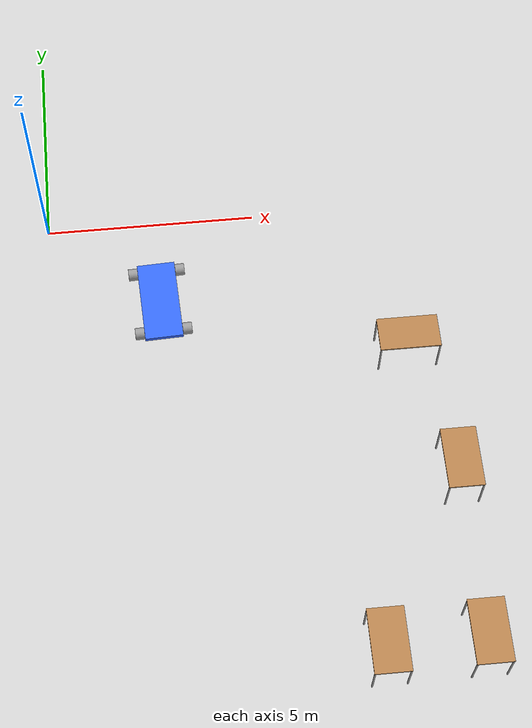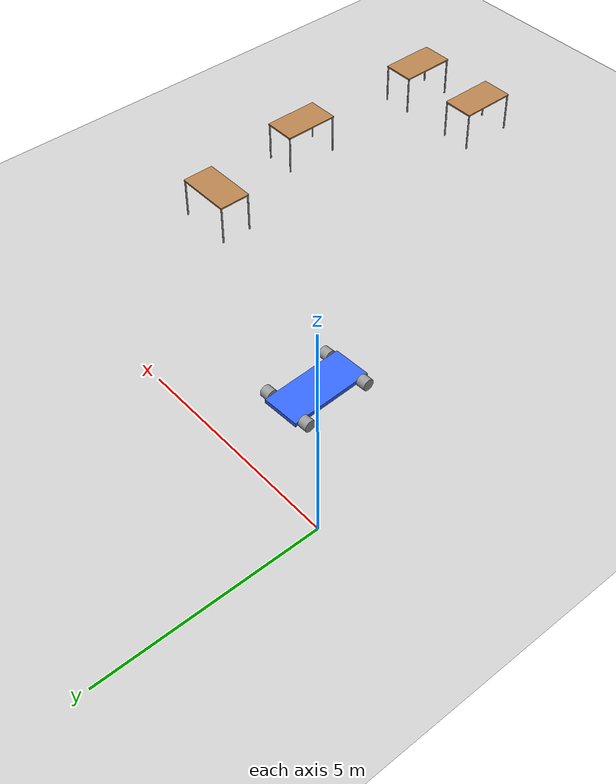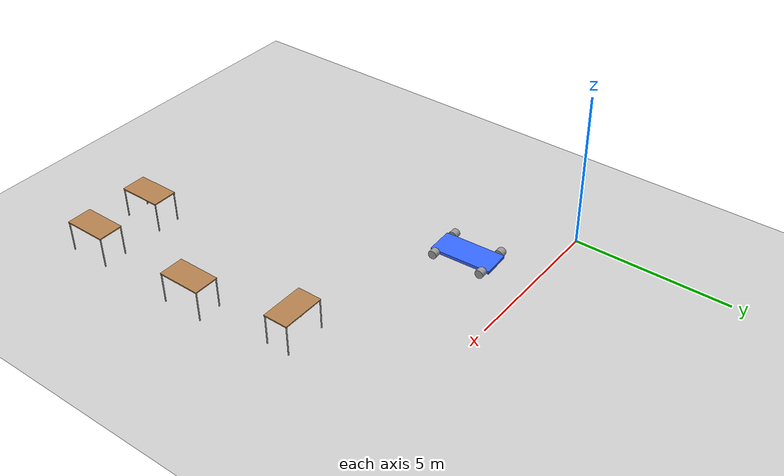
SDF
<sdf version="1.6">
 <world name="default">
  <model name="ground_plane">
   <static>1</static>
   <link name="link">
    <collision name="collision">
     <geometry><plane><normal>0 0 1</normal><size>100 100</size></plane></geometry>
     <surface><friction><ode><mu>100</mu><mu2>50</mu2></ode></friction></surface>
    </collision>
    <visual name="visual">
     <cast_shadows>0</cast_shadows>
     <geometry><plane><normal>0 0 1</normal><size>100 100</size></plane></geometry>
     <material>
      <script><uri>file://media/materials/scripts/gazebo.material</uri><name>Gazebo/Grey</name></script>
     </material>
    </visual>
   </link>
  </model>
  <model name="table_0_clone_0_clone_0">
   <static>0</static>
   <link name="link">
    <collision name="surface">
     <pose>0 0 1 0 -0 0</pose>
     <geometry><box><size>1.5 0.8 0.03</size></box></geometry>
     <surface><friction><ode><mu>0.6</mu><mu2>0.6</mu2></ode></friction></surface>
    </collision>
    <visual name="visual1">
     <pose>0 0 1 0 -0 0</pose>
     <geometry><box><size>1.4 0.8 0.04</size></box></geometry>
     <material>
      <script><uri>file://media/materials/scripts/gazebo.material</uri><name>Gazebo/Wood</name></script>
     </material>
    </visual>
    <collision name="front_left_leg">
     <pose>0.68 0.38 0.5 0 -0 0</pose>
     <geometry><cylinder><radius>0.02</radius><length>1</length></cylinder></geometry>
    </collision>
    <visual name="front_left_leg">
     <pose>0.68 0.38 0.5 0 -0 0</pose>
     <geometry><cylinder><radius>0.02</radius><length>1</length></cylinder></geometry>
     <material>
      <script><uri>file://media/materials/scripts/gazebo.material</uri><name>Gazebo/Grey</name></script>
     </material>
    </visual>
    <collision name="front_right_leg">
     <pose>0.68 -0.38 0.5 0 -0 0</pose>
     <geometry><cylinder><radius>0.02</radius><length>1</length></cylinder></geometry>
    </collision>
    <visual name="front_right_leg">
     <pose>0.68 -0.38 0.5 0 -0 0</pose>
     <geometry><cylinder><radius>0.02</radius><length>1</length></cylinder></geometry>
     <material>
      <script><uri>file://media/materials/scripts/gazebo.material</uri><name>Gazebo/Grey</name></script>
     </material>
    </visual>
    <collision name="back_right_leg">
     <pose>-0.68 -0.38 0.5 0 -0 0</pose>
     <geometry><cylinder><radius>0.02</radius><length>1</length></cylinder></geometry>
    </collision>
    <visual name="back_right_leg">
     <pose>-0.68 -0.38 0.5 0 -0 0</pose>
     <geometry><cylinder><radius>0.02</radius><length>1</length></cylinder></geometry>
     <material>
      <script><uri>file://media/materials/scripts/gazebo.material</uri><name>Gazebo/Grey</name></script>
     </material>
    </visual>
    <collision name="back_left_leg">
     <pose>-0.68 0.38 0.5 0 -0 0</pose>
     <geometry><cylinder><radius>0.02</radius><length>1</length></cylinder></geometry>
    </collision>
    <visual name="back_left_leg">
     <pose>-0.68 0.38 0.5 0 -0 0</pose>
     <geometry><cylinder><radius>0.02</radius><length>1</length></cylinder></geometry>
     <material>
      <script><uri>file://media/materials/scripts/gazebo.material</uri><name>Gazebo/Grey</name></script>
     </material>
    </visual>
    <inertial>
     <inertia><ixx>1</ixx><ixy>0</ixy><ixz>0</ixz><iyy>1</iyy><iyz>0</iyz><izz>1</izz></inertia>
     <mass>1</mass>
    </inertial>
   </link>
   <pose>8.95502 -11.1223 -3e-06 -3e-06 -2e-06 1.57</pose>
  </model>
  <model name="table_0_clone_0_clone_0_clone">
   <static>0</static>
   <link name="link">
    <collision name="surface">
     <pose>0 0 1 0 -0 0</pose>
     <geometry><box><size>1.5 0.8 0.03</size></box></geometry>
     <surface><friction><ode><mu>0.6</mu><mu2>0.6</mu2></ode></friction></surface>
    </collision>
    <visual name="visual1">
     <pose>0 0 1 0 -0 0</pose>
     <geometry><box><size>1.4 0.8 0.04</size></box></geometry>
     <material>
      <script><uri>file://media/materials/scripts/gazebo.material</uri><name>Gazebo/Wood</name></script>
     </material>
    </visual>
    <collision name="front_left_leg">
     <pose>0.68 0.38 0.5 0 -0 0</pose>
     <geometry><cylinder><radius>0.02</radius><length>1</length></cylinder></geometry>
    </collision>
    <visual name="front_left_leg">
     <pose>0.68 0.38 0.5 0 -0 0</pose>
     <geometry><cylinder><radius>0.02</radius><length>1</length></cylinder></geometry>
     <material>
      <script><uri>file://media/materials/scripts/gazebo.material</uri><name>Gazebo/Grey</name></script>
     </material>
    </visual>
    <collision name="front_right_leg">
     <pose>0.68 -0.38 0.5 0 -0 0</pose>
     <geometry><cylinder><radius>0.02</radius><length>1</length></cylinder></geometry>
    </collision>
    <visual name="front_right_leg">
     <pose>0.68 -0.38 0.5 0 -0 0</pose>
     <geometry><cylinder><radius>0.02</radius><length>1</length></cylinder></geometry>
     <material>
      <script><uri>file://media/materials/scripts/gazebo.material</uri><name>Gazebo/Grey</name></script>
     </material>
    </visual>
    <collision name="back_right_leg">
     <pose>-0.68 -0.38 0.5 0 -0 0</pose>
     <geometry><cylinder><radius>0.02</radius><length>1</length></cylinder></geometry>
    </collision>
    <visual name="back_right_leg">
     <pose>-0.68 -0.38 0.5 0 -0 0</pose>
     <geometry><cylinder><radius>0.02</radius><length>1</length></cylinder></geometry>
     <material>
      <script><uri>file://media/materials/scripts/gazebo.material</uri><name>Gazebo/Grey</name></script>
     </material>
    </visual>
    <collision name="back_left_leg">
     <pose>-0.68 0.38 0.5 0 -0 0</pose>
     <geometry><cylinder><radius>0.02</radius><length>1</length></cylinder></geometry>
    </collision>
    <visual name="back_left_leg">
     <pose>-0.68 0.38 0.5 0 -0 0</pose>
     <geometry><cylinder><radius>0.02</radius><length>1</length></cylinder></geometry>
     <material>
      <script><uri>file://media/materials/scripts/gazebo.material</uri><name>Gazebo/Grey</name></script>
     </material>
    </visual>
    <inertial>
     <inertia><ixx>1</ixx><ixy>0</ixy><ixz>0</ixz><iyy>1</iyy><iyz>0</iyz><izz>1</izz></inertia>
     <mass>1</mass>
    </inertial>
   </link>
   <pose>6.82658 -11.1283 -3e-06 -2e-06 -2e-06 1.57</pose>
  </model>
  <model name="table_0_clone_0_clone_0_clone_0">
   <static>0</static>
   <link name="link">
    <collision name="surface">
     <pose>0 0 1 0 -0 0</pose>
     <geometry><box><size>1.5 0.8 0.03</size></box></geometry>
     <surface><friction><ode><mu>0.6</mu><mu2>0.6</mu2></ode></friction></surface>
    </collision>
    <visual name="visual1">
     <pose>0 0 1 0 -0 0</pose>
     <geometry><box><size>1.4 0.8 0.04</size></box></geometry>
     <material>
      <script><uri>file://media/materials/scripts/gazebo.material</uri><name>Gazebo/Wood</name></script>
     </material>
    </visual>
    <collision name="front_left_leg">
     <pose>0.68 0.38 0.5 0 -0 0</pose>
     <geometry><cylinder><radius>0.02</radius><length>1</length></cylinder></geometry>
    </collision>
    <visual name="front_left_leg">
     <pose>0.68 0.38 0.5 0 -0 0</pose>
     <geometry><cylinder><radius>0.02</radius><length>1</length></cylinder></geometry>
     <material>
      <script><uri>file://media/materials/scripts/gazebo.material</uri><name>Gazebo/Grey</name></script>
     </material>
    </visual>
    <collision name="front_right_leg">
     <pose>0.68 -0.38 0.5 0 -0 0</pose>
     <geometry><cylinder><radius>0.02</radius><length>1</length></cylinder></geometry>
    </collision>
    <visual name="front_right_leg">
     <pose>0.68 -0.38 0.5 0 -0 0</pose>
     <geometry><cylinder><radius>0.02</radius><length>1</length></cylinder></geometry>
     <material>
      <script><uri>file://media/materials/scripts/gazebo.material</uri><name>Gazebo/Grey</name></script>
     </material>
    </visual>
    <collision name="back_right_leg">
     <pose>-0.68 -0.38 0.5 0 -0 0</pose>
     <geometry><cylinder><radius>0.02</radius><length>1</length></cylinder></geometry>
    </collision>
    <visual name="back_right_leg">
     <pose>-0.68 -0.38 0.5 0 -0 0</pose>
     <geometry><cylinder><radius>0.02</radius><length>1</length></cylinder></geometry>
     <material>
      <script><uri>file://media/materials/scripts/gazebo.material</uri><name>Gazebo/Grey</name></script>
     </material>
    </visual>
    <collision name="back_left_leg">
     <pose>-0.68 0.38 0.5 0 -0 0</pose>
     <geometry><cylinder><radius>0.02</radius><length>1</length></cylinder></geometry>
    </collision>
    <visual name="back_left_leg">
     <pose>-0.68 0.38 0.5 0 -0 0</pose>
     <geometry><cylinder><radius>0.02</radius><length>1</length></cylinder></geometry>
     <material>
      <script><uri>file://media/materials/scripts/gazebo.material</uri><name>Gazebo/Grey</name></script>
     </material>
    </visual>
    <inertial>
     <inertia><ixx>1</ixx><ixy>0</ixy><ixz>0</ixz><iyy>1</iyy><iyz>0</iyz><izz>1</izz></inertia>
     <mass>1</mass>
    </inertial>
   </link>
   <pose>8.979 -7.20182 -3e-06 -3e-06 -2e-06 1.57</pose>
  </model>
  <model name="table_1_clone_0">
   <static>0</static>
   <link name="link">
    <collision name="surface">
     <pose>0 0 1 0 -0 0</pose>
     <geometry><box><size>1.5 0.8 0.03</size></box></geometry>
     <surface><friction><ode><mu>0.6</mu><mu2>0.6</mu2></ode></friction></surface>
    </collision>
    <visual name="visual1">
     <pose>0 0 1 0 -0 0</pose>
     <geometry><box><size>1.4 0.8 0.04</size></box></geometry>
     <material>
      <script><uri>file://media/materials/scripts/gazebo.material</uri><name>Gazebo/Wood</name></script>
     </material>
    </visual>
    <collision name="front_left_leg">
     <pose>0.68 0.38 0.5 0 -0 0</pose>
     <geometry><cylinder><radius>0.02</radius><length>1</length></cylinder></geometry>
    </collision>
    <visual name="front_left_leg">
     <pose>0.68 0.38 0.5 0 -0 0</pose>
     <geometry><cylinder><radius>0.02</radius><length>1</length></cylinder></geometry>
     <material>
      <script><uri>file://media/materials/scripts/gazebo.material</uri><name>Gazebo/Grey</name></script>
     </material>
    </visual>
    <collision name="front_right_leg">
     <pose>0.68 -0.38 0.5 0 -0 0</pose>
     <geometry><cylinder><radius>0.02</radius><length>1</length></cylinder></geometry>
    </collision>
    <visual name="front_right_leg">
     <pose>0.68 -0.38 0.5 0 -0 0</pose>
     <geometry><cylinder><radius>0.02</radius><length>1</length></cylinder></geometry>
     <material>
      <script><uri>file://media/materials/scripts/gazebo.material</uri><name>Gazebo/Grey</name></script>
     </material>
    </visual>
    <collision name="back_right_leg">
     <pose>-0.68 -0.38 0.5 0 -0 0</pose>
     <geometry><cylinder><radius>0.02</radius><length>1</length></cylinder></geometry>
    </collision>
    <visual name="back_right_leg">
     <pose>-0.68 -0.38 0.5 0 -0 0</pose>
     <geometry><cylinder><radius>0.02</radius><length>1</length></cylinder></geometry>
     <material>
      <script><uri>file://media/materials/scripts/gazebo.material</uri><name>Gazebo/Grey</name></script>
     </material>
    </visual>
    <collision name="back_left_leg">
     <pose>-0.68 0.38 0.5 0 -0 0</pose>
     <geometry><cylinder><radius>0.02</radius><length>1</length></cylinder></geometry>
    </collision>
    <visual name="back_left_leg">
     <pose>-0.68 0.38 0.5 0 -0 0</pose>
     <geometry><cylinder><radius>0.02</radius><length>1</length></cylinder></geometry>
     <material>
      <script><uri>file://media/materials/scripts/gazebo.material</uri><name>Gazebo/Grey</name></script>
     </material>
    </visual>
    <inertial>
     <inertia><ixx>1</ixx><ixy>0</ixy><ixz>0</ixz><iyy>1</iyy><iyz>0</iyz><izz>1</izz></inertia>
     <mass>1</mass>
    </inertial>
   </link>
   <pose>8.23817 -4.02749 -9e-06 0 -1e-06 0</pose>
  </model>
  <model name="gokart_3_clone">
   <link name="link_0">
    <pose>1e-06 -0.118472 -0 -0 -0 -0</pose>
    <inertial>
     <mass>1.59387</mass>
     <inertia>
      <ixx>0.470249</ixx>
      <ixy>0</ixy>
      <ixz>0</ixz>
      <iyy>0.265646</iyy>
      <iyz>0</iyz>
      <izz>0.470249</izz>
     </inertia>
    </inertial>
    <visual name="visual">
     <geometry><box><size>2 0.9 0.1</size></box></geometry>
     <material>
      <lighting>1</lighting>
      <script><uri>file://media/materials/scripts/gazebo.material</uri><name>Gazebo/Grey</name></script>
      <ambient>0.2 0.4 1 1</ambient>
      <diffuse>0.2 0.4 1 1</diffuse>
      <specular>0.01 0.01 0.01 1</specular>
      <emissive>0 0 0 1</emissive>
      <shader type="vertex"><normal_map>__default__</normal_map></shader>
     </material>
    </visual>
    <collision name="collision">
     <geometry><box><size>2 0.9 0.1</size></box></geometry>
     <surface>
      <friction>
       <ode><mu>1</mu><mu2>1</mu2><fdir1>0 0 0</fdir1><slip1>0</slip1><slip2>0</slip2></ode>
       <torsional>
        <coefficient>1</coefficient>
        <patch_radius>0</patch_radius>
        <surface_radius>0</surface_radius>
        <use_patch_radius>1</use_patch_radius>
        <ode><slip>0</slip></ode>
       </torsional>
      </friction>
      <bounce><restitution_coefficient>0</restitution_coefficient><threshold>1e+06</threshold></bounce>
      <contact>
       <collide_without_contact>0</collide_without_contact>
       <collide_without_contact_bitmask>1</collide_without_contact_bitmask>
       <collide_bitmask>1</collide_bitmask>
       <ode>
        <soft_cfm>0</soft_cfm>
        <soft_erp>0.2</soft_erp>
        <kp>1e+13</kp>
        <kd>1</kd>
        <max_vel>0.01</max_vel>
        <min_depth>0</min_depth>
       </ode>
       <bullet>
        <split_impulse>1</split_impulse>
        <split_impulse_penetration_threshold>-0.01</split_impulse_penetration_threshold>
        <soft_cfm>0</soft_cfm>
        <soft_erp>0.2</soft_erp>
        <kp>1e+13</kp>
        <kd>1</kd>
       </bullet>
      </contact>
     </surface>
    </collision>
   </link>
   <link name="link_1">
    <pose>-0.81362 -0.678506 9e-06 1.5707 -0 0</pose>
    <inertial>
     <mass>1</mass>
     <inertia><ixx>0.145833</ixx><ixy>0</ixy><ixz>0</ixz><iyy>0.145833</iyy><iyz>0</iyz><izz>0.125</izz></inertia>
    </inertial>
    <visual name="visual">
     <geometry><cylinder><radius>0.14</radius><length>0.22</length></cylinder></geometry>
     <material>
      <lighting>1</lighting>
      <script><uri>file://media/materials/scripts/gazebo.material</uri><name>Gazebo/Grey</name></script>
      <ambient>0.1 0.1 0.1 1</ambient>
      <diffuse>0.1 0.1 0.1 1</diffuse>
      <specular>0.01 0.01 0.01 1</specular>
      <emissive>0 0 0 1</emissive>
      <shader type="vertex"><normal_map>__default__</normal_map></shader>
     </material>
    </visual>
    <collision name="collision">
     <geometry><cylinder><radius>0.14</radius><length>0.22</length></cylinder></geometry>
     <surface>
      <friction>
       <ode><mu>1</mu><mu2>1</mu2><fdir1>0 0 0</fdir1><slip1>0</slip1><slip2>0</slip2></ode>
       <torsional>
        <coefficient>1</coefficient>
        <patch_radius>0</patch_radius>
        <surface_radius>0</surface_radius>
        <use_patch_radius>1</use_patch_radius>
        <ode><slip>0</slip></ode>
       </torsional>
      </friction>
      <bounce><restitution_coefficient>0</restitution_coefficient><threshold>1e+06</threshold></bounce>
      <contact>
       <collide_without_contact>0</collide_without_contact>
       <collide_without_contact_bitmask>1</collide_without_contact_bitmask>
       <collide_bitmask>1</collide_bitmask>
       <ode>
        <soft_cfm>0</soft_cfm>
        <soft_erp>0.2</soft_erp>
        <kp>1e+13</kp>
        <kd>1</kd>
        <max_vel>0.01</max_vel>
        <min_depth>0</min_depth>
       </ode>
       <bullet>
        <split_impulse>1</split_impulse>
        <split_impulse_penetration_threshold>-0.01</split_impulse_penetration_threshold>
        <soft_cfm>0</soft_cfm>
        <soft_erp>0.2</soft_erp>
        <kp>1e+13</kp>
        <kd>1</kd>
       </bullet>
      </contact>
     </surface>
    </collision>
   </link>
   <link name="link_1_clone">
    <pose>-0.813633 0.441545 0 1.5707 -0 0</pose>
    <inertial>
     <mass>1</mass>
     <inertia><ixx>0.145833</ixx><ixy>0</ixy><ixz>0</ixz><iyy>0.145833</iyy><iyz>0</iyz><izz>0.125</izz></inertia>
    </inertial>
    <visual name="visual">
     <geometry><cylinder><radius>0.14</radius><length>0.22</length></cylinder></geometry>
     <material>
      <lighting>1</lighting>
      <script><uri>file://media/materials/scripts/gazebo.material</uri><name>Gazebo/Grey</name></script>
      <ambient>0.1 0.1 0.1 1</ambient>
      <diffuse>0.1 0.1 0.1 1</diffuse>
      <specular>0.01 0.01 0.01 1</specular>
      <emissive>0 0 0 1</emissive>
      <shader type="vertex"><normal_map>__default__</normal_map></shader>
     </material>
    </visual>
    <collision name="collision">
     <geometry><cylinder><radius>0.14</radius><length>0.22</length></cylinder></geometry>
     <surface>
      <friction>
       <ode><mu>1</mu><mu2>1</mu2><fdir1>0 0 0</fdir1><slip1>0</slip1><slip2>0</slip2></ode>
       <torsional>
        <coefficient>1</coefficient>
        <patch_radius>0</patch_radius>
        <surface_radius>0</surface_radius>
        <use_patch_radius>1</use_patch_radius>
        <ode><slip>0</slip></ode>
       </torsional>
      </friction>
      <bounce><restitution_coefficient>0</restitution_coefficient><threshold>1e+06</threshold></bounce>
      <contact>
       <collide_without_contact>0</collide_without_contact>
       <collide_without_contact_bitmask>1</collide_without_contact_bitmask>
       <collide_bitmask>1</collide_bitmask>
       <ode>
        <soft_cfm>0</soft_cfm>
        <soft_erp>0.2</soft_erp>
        <kp>1e+13</kp>
        <kd>1</kd>
        <max_vel>0.01</max_vel>
        <min_depth>0</min_depth>
       </ode>
       <bullet>
        <split_impulse>1</split_impulse>
        <split_impulse_penetration_threshold>-0.01</split_impulse_penetration_threshold>
        <soft_cfm>0</soft_cfm>
        <soft_erp>0.2</soft_erp>
        <kp>1e+13</kp>
        <kd>1</kd>
       </bullet>
      </contact>
     </surface>
    </collision>
   </link>
   <link name="link_1_clone_0">
    <pose>0.8 -0.678488 6e-06 1.5707 1.1e-05 1.1e-05</pose>
    <inertial>
     <mass>1</mass>
     <inertia><ixx>0.145833</ixx><ixy>0</ixy><ixz>0</ixz><iyy>0.145833</iyy><iyz>0</iyz><izz>0.125</izz></inertia>
    </inertial>
    <visual name="visual">
     <geometry><cylinder><radius>0.14</radius><length>0.22</length></cylinder></geometry>
     <material>
      <lighting>1</lighting>
      <script><uri>file://media/materials/scripts/gazebo.material</uri><name>Gazebo/Grey</name></script>
      <ambient>0.1 0.1 0.1 1</ambient>
      <diffuse>0.1 0.1 0.1 1</diffuse>
      <specular>0.01 0.01 0.01 1</specular>
      <emissive>0 0 0 1</emissive>
      <shader type="vertex"><normal_map>__default__</normal_map></shader>
     </material>
    </visual>
    <collision name="collision">
     <geometry><cylinder><radius>0.14</radius><length>0.22</length></cylinder></geometry>
     <surface>
      <friction>
       <ode><mu>1</mu><mu2>1</mu2><fdir1>0 0 0</fdir1><slip1>0</slip1><slip2>0</slip2></ode>
       <torsional>
        <coefficient>1</coefficient>
        <patch_radius>0</patch_radius>
        <surface_radius>0</surface_radius>
        <use_patch_radius>1</use_patch_radius>
        <ode><slip>0</slip></ode>
       </torsional>
      </friction>
      <bounce><restitution_coefficient>0</restitution_coefficient><threshold>1e+06</threshold></bounce>
      <contact>
       <collide_without_contact>0</collide_without_contact>
       <collide_without_contact_bitmask>1</collide_without_contact_bitmask>
       <collide_bitmask>1</collide_bitmask>
       <ode>
        <soft_cfm>0</soft_cfm>
        <soft_erp>0.2</soft_erp>
        <kp>1e+13</kp>
        <kd>1</kd>
        <max_vel>0.01</max_vel>
        <min_depth>0</min_depth>
       </ode>
       <bullet>
        <split_impulse>1</split_impulse>
        <split_impulse_penetration_threshold>-0.01</split_impulse_penetration_threshold>
        <soft_cfm>0</soft_cfm>
        <soft_erp>0.2</soft_erp>
        <kp>1e+13</kp>
        <kd>1</kd>
       </bullet>
      </contact>
     </surface>
    </collision>
   </link>
   <link name="link_1_clone_1">
    <pose>0.800005 0.441562 -2e-06 1.5707 1.1e-05 1.1e-05</pose>
    <inertial>
     <mass>1</mass>
     <inertia><ixx>0.145833</ixx><ixy>0</ixy><ixz>0</ixz><iyy>0.145833</iyy><iyz>0</iyz><izz>0.125</izz></inertia>
    </inertial>
    <visual name="visual">
     <geometry><cylinder><radius>0.14</radius><length>0.22</length></cylinder></geometry>
     <material>
      <lighting>1</lighting>
      <script><uri>file://media/materials/scripts/gazebo.material</uri><name>Gazebo/Grey</name></script>
      <ambient>0.1 0.1 0.1 1</ambient>
      <diffuse>0.1 0.1 0.1 1</diffuse>
      <specular>0.01 0.01 0.01 1</specular>
      <emissive>0 0 0 1</emissive>
      <shader type="vertex"><normal_map>__default__</normal_map></shader>
     </material>
    </visual>
    <collision name="collision">
     <geometry><cylinder><radius>0.14</radius><length>0.22</length></cylinder></geometry>
     <surface>
      <friction>
       <ode><mu>1</mu><mu2>1</mu2><fdir1>0 0 0</fdir1><slip1>0</slip1><slip2>0</slip2></ode>
       <torsional>
        <coefficient>1</coefficient>
        <patch_radius>0</patch_radius>
        <surface_radius>0</surface_radius>
        <use_patch_radius>1</use_patch_radius>
        <ode><slip>0</slip></ode>
       </torsional>
      </friction>
      <bounce><restitution_coefficient>0</restitution_coefficient><threshold>1e+06</threshold></bounce>
      <contact>
       <collide_without_contact>0</collide_without_contact>
       <collide_without_contact_bitmask>1</collide_without_contact_bitmask>
       <collide_bitmask>1</collide_bitmask>
       <ode>
        <soft_cfm>0</soft_cfm>
        <soft_erp>0.2</soft_erp>
        <kp>1e+13</kp>
        <kd>1</kd>
        <max_vel>0.01</max_vel>
        <min_depth>0</min_depth>
       </ode>
       <bullet>
        <split_impulse>1</split_impulse>
        <split_impulse_penetration_threshold>-0.01</split_impulse_penetration_threshold>
        <soft_cfm>0</soft_cfm>
        <soft_erp>0.2</soft_erp>
        <kp>1e+13</kp>
        <kd>1</kd>
       </bullet>
      </contact>
     </surface>
    </collision>
   </link>
   <joint name="link_0_JOINT_0_0" type="revolute">
    <parent>link_0</parent>
    <child>link_1_clone_0</child>
    <axis>
     <xyz>0 0 1</xyz>
     <use_parent_model_frame>0</use_parent_model_frame>
     <limit>
      <lower>-1.79769e+308</lower>
      <upper>1.79769e+308</upper>
      <effort>-1</effort>
      <velocity>-1</velocity>
     </limit>
     <dynamics>
      <spring_reference>0</spring_reference>
      <spring_stiffness>0</spring_stiffness>
      <damping>0</damping>
      <friction>0</friction>
     </dynamics>
    </axis>
    <physics>
     <ode><limit><cfm>0</cfm><erp>0.2</erp></limit><suspension><cfm>0</cfm><erp>0.2</erp></suspension></ode>
    </physics>
   </joint>
   <joint name="link_0_JOINT_0" type="revolute">
    <parent>link_0</parent>
    <child>link_1</child>
    <axis>
     <xyz>0 0 1</xyz>
     <use_parent_model_frame>0</use_parent_model_frame>
     <limit>
      <lower>-1.79769e+308</lower>
      <upper>1.79769e+308</upper>
      <effort>-1</effort>
      <velocity>-1</velocity>
     </limit>
     <dynamics>
      <spring_reference>0</spring_reference>
      <spring_stiffness>0</spring_stiffness>
      <damping>0</damping>
      <friction>0</friction>
     </dynamics>
    </axis>
    <physics>
     <ode><limit><cfm>0</cfm><erp>0.2</erp></limit><suspension><cfm>0</cfm><erp>0.2</erp></suspension></ode>
    </physics>
   </joint>
   <joint name="link_0_JOINT_1_0" type="revolute">
    <parent>link_0</parent>
    <child>link_1_clone_1</child>
    <axis>
     <xyz>1 0 0</xyz>
     <use_parent_model_frame>0</use_parent_model_frame>
     <limit>
      <lower>-1.79769e+308</lower>
      <upper>1.79769e+308</upper>
      <effort>-1</effort>
      <velocity>-1</velocity>
     </limit>
     <dynamics>
      <spring_reference>0</spring_reference>
      <spring_stiffness>0</spring_stiffness>
      <damping>0</damping>
      <friction>0</friction>
     </dynamics>
    </axis>
    <physics>
     <ode><limit><cfm>0</cfm><erp>0.2</erp></limit><suspension><cfm>0</cfm><erp>0.2</erp></suspension></ode>
    </physics>
   </joint>
   <joint name="link_0_JOINT_1" type="revolute">
    <parent>link_0</parent>
    <child>link_1_clone</child>
    <axis>
     <xyz>0 0 1</xyz>
     <use_parent_model_frame>0</use_parent_model_frame>
     <limit>
      <lower>-1.79769e+308</lower>
      <upper>1.79769e+308</upper>
      <effort>-1</effort>
      <velocity>-1</velocity>
     </limit>
     <dynamics>
      <spring_reference>0</spring_reference>
      <spring_stiffness>0</spring_stiffness>
      <damping>0</damping>
      <friction>0</friction>
     </dynamics>
    </axis>
    <physics>
     <ode><limit><cfm>0</cfm><erp>0.2</erp></limit><suspension><cfm>0</cfm><erp>0.2</erp></suspension></ode>
    </physics>
   </joint>
   <static>0</static>
   <pose>2.48093 -2.20901 0.14 8e-06 7e-06 1.61434</pose>
  </model>
 </world>
</sdf>
